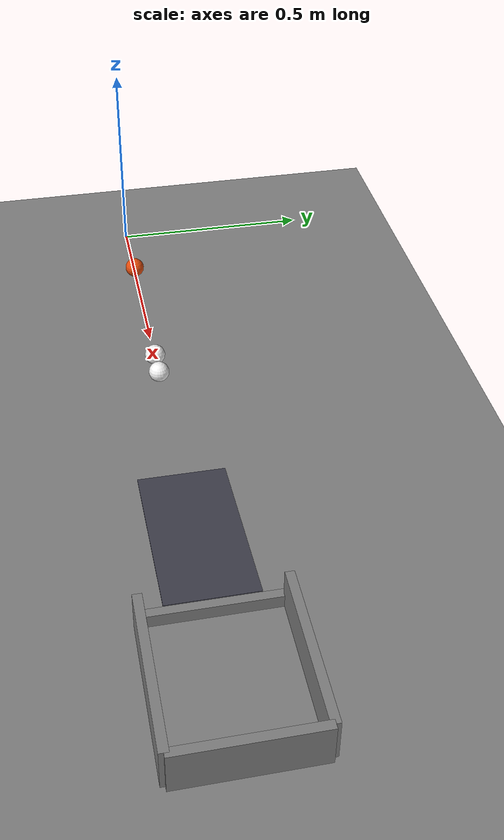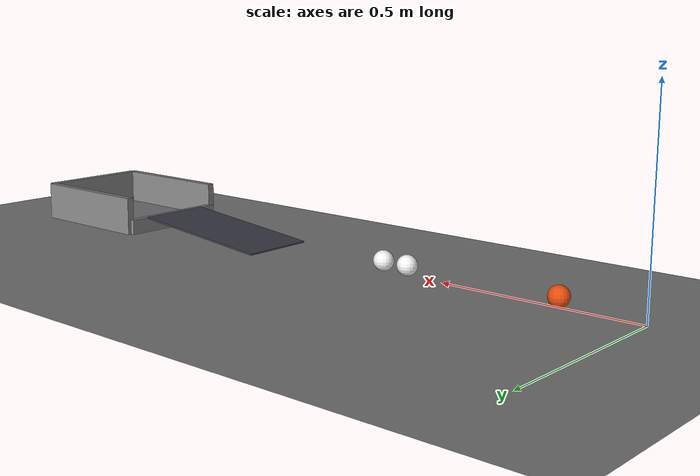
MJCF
<mujoco model="three_balls_into_a_cup">
  <compiler angle="radian"/>
  <option timestep="0.002"/>
  <worldbody>
    <geom name="floor" type="plane" size="6 6 0.1" friction="0.8 0.0001 5e-05"/>
    <body name="ball1" pos="0.2 0 0.025">
      <freejoint/>
      <geom name="ball1" type="sphere" pos="0 0 0" size="0.025" mass="0.1" condim="6" friction="0.05 0.0001 5e-05" solref="0.01 0.2" rgba="0.9 0.3 0.05 1"/>
    </body>
    <body name="ball2" pos="0.6 0 0.025">
      <freejoint/>
      <geom name="ball2" type="sphere" pos="0 0 0" size="0.025" mass="0.1" condim="6" friction="0.05 0.0001 5e-05" solref="0.01 0.2" rgba="0.95 0.95 0.95 1"/>
    </body>
    <body name="ball3" pos="0.67 0 0.025">
      <freejoint/>
      <geom name="ball3" type="sphere" pos="0 0 0" size="0.025" mass="0.1" condim="6" friction="0.05 0.0001 5e-05" solref="0.01 0.2" rgba="0.95 0.95 0.95 1"/>
    </body>
    <body name="cup">
      <geom name="cup_base" type="box" pos="1.6 0 0.005" size="0.175 0.15 0.005"/>
      <geom name="cup_near_wall" type="box" pos="1.425 0 0.02" size="0.01 0.15 0.02"/>
      <geom name="cup_far_wall" type="box" pos="1.775 0 0.05" size="0.01 0.15 0.05"/>
      <geom name="cup_left_wall" type="box" pos="1.6 0.15 0.05" size="0.175 0.01 0.05"/>
      <geom name="cup_right_wall" type="box" pos="1.6 -0.15 0.05" size="0.175 0.01 0.05"/>
    </body>
    <body name="ramp top">
    </body>
    <body name="ramp foot">
    </body>
    <body name="cup ramp">
      <geom name="cup ramp" type="box" pos="1.215 0 0.02" size="0.200998 0.1 0.002" euler="0 3.04192 0" rgba="0.25 0.25 0.3 1"/>
    </body>
  </worldbody>
  <keyframe>
    <key name="start" qpos="0.2 0 0.025 1 0 0 0 0.6 0 0.025 1 0 0 0 0.67 0 0.025 1 0 0 0" qvel="4 0 0 0 0 0 0 0 0 0 0 0 0 0 0 0 0 0"/>
  </keyframe>
</mujoco>
